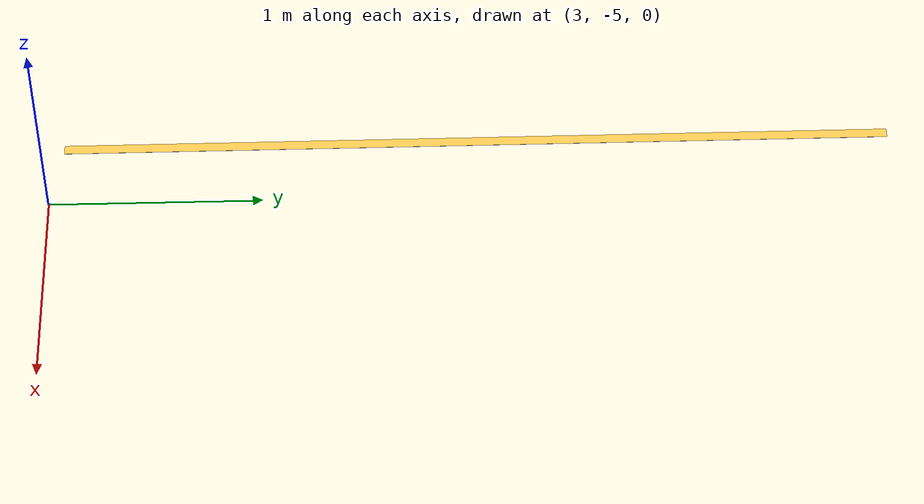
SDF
<?xml version='1.0'?>
<sdf version='1.7'>
  <model name='yellow_lane'>
    <pose>1.3425 -2.4725 0 0 -0 0</pose>
    <link name='Wall_0'>
      <collision name='Wall_0_Collision'>
        <geometry>
          <box>
            <size>3.9 0.05 0.001</size>
          </box>
        </geometry>
        <pose>0 0 0.0005 0 -0 0</pose>
      </collision>
      <visual name='Wall_0_Visual'>
        <pose>0 0 0.0005 0 -0 0</pose>
        <geometry>
          <box>
            <size>3.9 0.05 0.001</size>
          </box>
        </geometry>
        <material>
          <script>
            <uri>file://media/materials/scripts/gazebo.material</uri>
            <name>Gazebo/Grey</name>
          </script>
          <ambient>1 0.764706 0.305882 1</ambient>
        </material>
        <meta>
          <layer>0</layer>
        </meta>
      </visual>
      <pose>1.3175 -0.5225 0 0 -0 1.5708</pose>
    </link>
    <static>1</static>
  </model>
</sdf>
